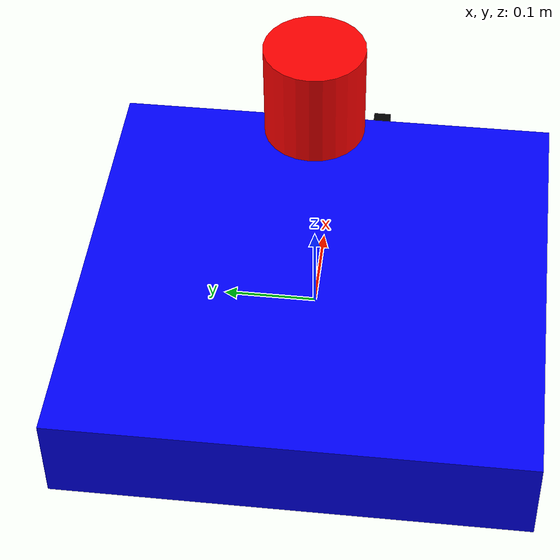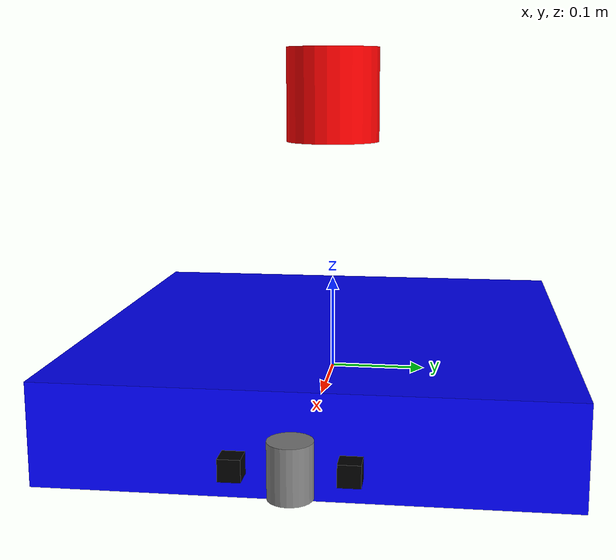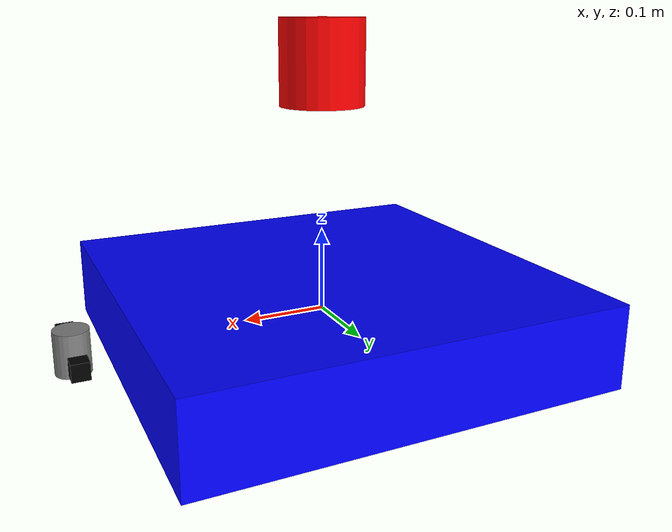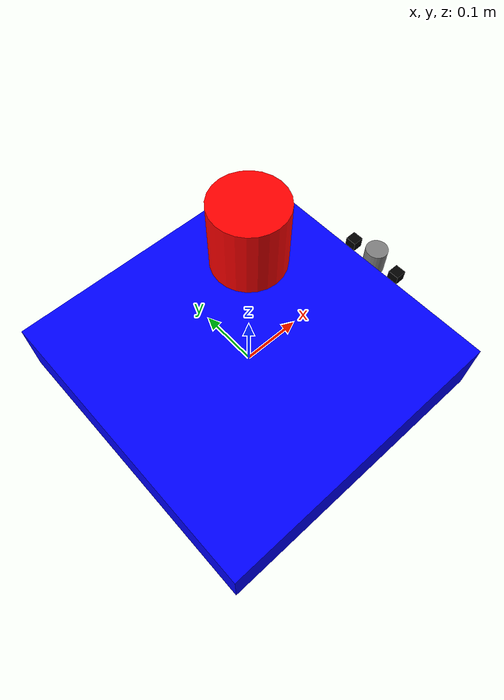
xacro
<?xml version="1.0"?>
<robot xmlns:xacro="http://www.ros.org/wiki/xacro" name="airstack_robot">

  <!-- Parameters -->
  <xacro:arg name="robot_name" default="robot_1" />
  <xacro:property name="robot_name" value="$(arg robot_name)" />

  <!-- Use generic frame names to match domain bridge remapping -->
  <!-- Simulation publishes with generic frames via namespaced topics, remapped to /tf -->

  <!-- Base link -->
  <link name="base_link">
    <visual>
      <geometry>
        <box size="0.5 0.5 0.1"/>
      </geometry>
      <material name="blue">
        <color rgba="0 0 1 1"/>
      </material>
    </visual>
    <collision>
      <geometry>
        <box size="0.5 0.5 0.1"/>
      </geometry>
    </collision>
    <inertial>
      <mass value="2.0"/>
      <inertia ixx="0.04" ixy="0.0" ixz="0.0" iyy="0.04" iyz="0.0" izz="0.08"/>
    </inertial>
  </link>

  <!-- Camera mount -->
  <link name="camera_mount">
    <visual>
      <geometry>
        <cylinder radius="0.02" length="0.05"/>
      </geometry>
      <material name="gray">
        <color rgba="0.5 0.5 0.5 1"/>
      </material>
    </visual>
  </link>

  <joint name="base_to_camera_mount" type="fixed">
    <parent link="base_link"/>
    <child link="camera_mount"/>
    <origin xyz="0.30 0 0" rpy="0 0 0"/>
  </joint>

  <!-- Left camera -->
  <link name="left">
    <visual>
      <geometry>
        <box size="0.02 0.02 0.02"/>
      </geometry>
      <material name="black">
        <color rgba="0 0 0 1"/>
      </material>
    </visual>
  </link>

  <joint name="camera_mount_to_left" type="fixed">
    <parent link="camera_mount"/>
    <child link="left"/>
    <origin xyz="0 -0.05 0" rpy="-1.5708 0 -1.5708"/>
  </joint>

  <!-- Right camera -->
  <link name="right">
    <visual>
      <geometry>
        <box size="0.02 0.02 0.02"/>
      </geometry>
      <material name="black">
        <color rgba="0 0 0 1"/>
      </material>
    </visual>
  </link>

  <joint name="camera_mount_to_right" type="fixed">
    <parent link="camera_mount"/>
    <child link="right"/>
    <origin xyz="0 0.05 0" rpy="-1.5708 0 -1.5708"/>
  </joint>

  <!-- LiDAR sensor -->
  <link name="ouster">
    <visual>
      <geometry>
        <cylinder radius="0.05" length="0.1"/>
      </geometry>
      <material name="red">
        <color rgba="1 0 0 1"/>
      </material>
    </visual>
  </link>

  <joint name="base_to_ouster" type="fixed">
    <parent link="base_link"/>
    <child link="ouster"/>
    <origin xyz="0 0 0.3" rpy="0 0 0"/>
  </joint>

</robot>
